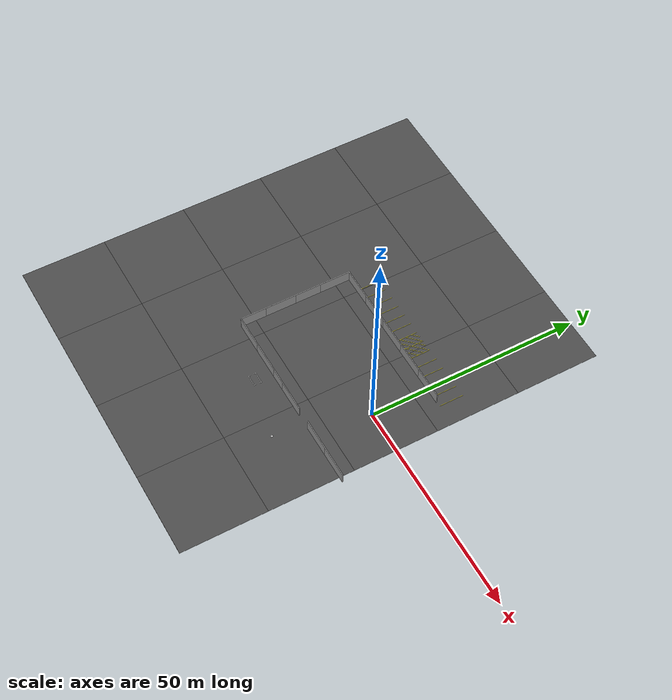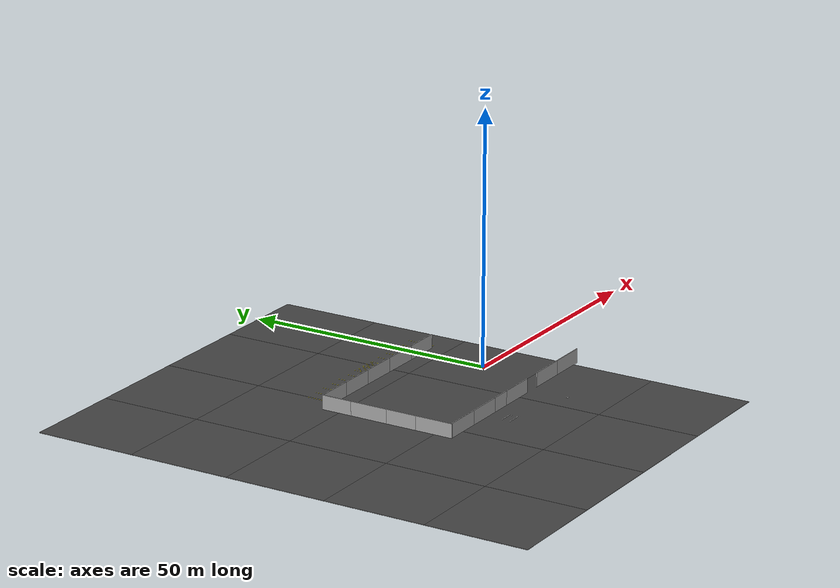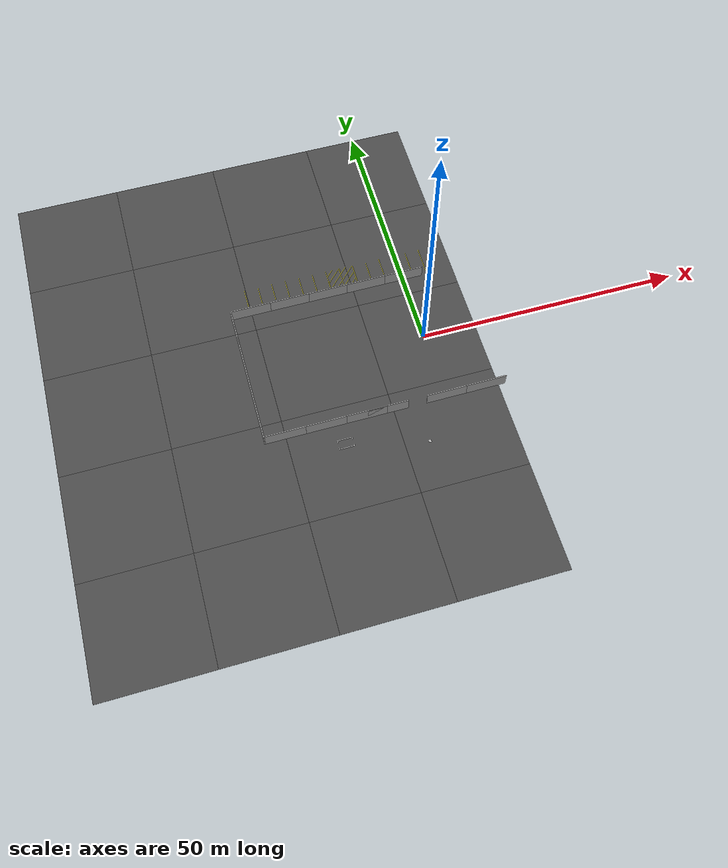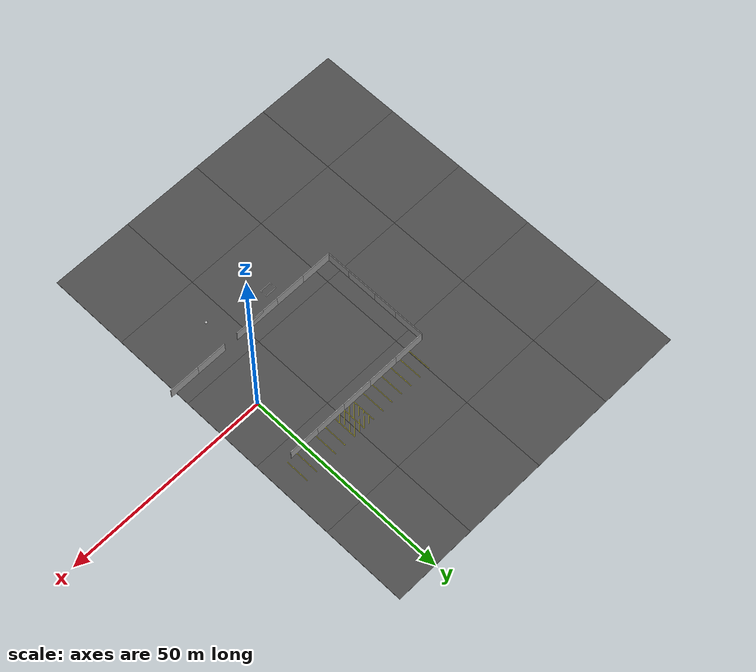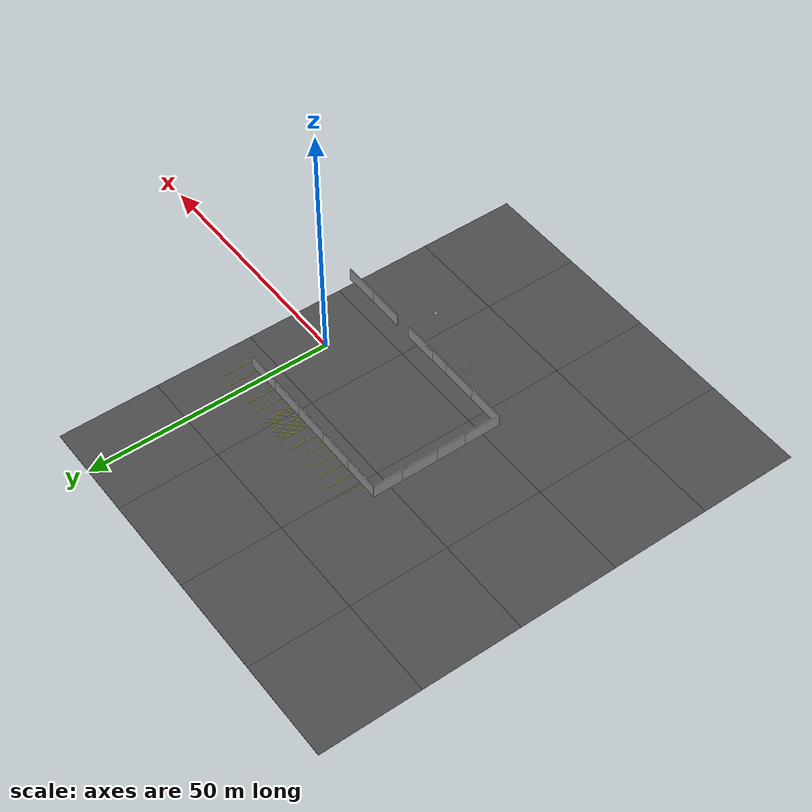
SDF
<sdf version="1.6">
 <world name="default">
  <model name="grey_wall">
   <static>1</static>
   <link name="link">
    <pose>0 0 1.4 0 -0 0</pose>
    <collision name="collision"><geometry><box><size>7.5 0.2 2.8</size></box></geometry></collision>
    <visual name="visual">
     <cast_shadows>0</cast_shadows>
     <geometry><box><size>7.5 0.2 2.8</size></box></geometry>
     <material>
      <script>
       <uri>model://grey_wall/materials/scripts</uri>
       <uri>model://grey_wall/materials/textures</uri>
       <name>vrc/grey_wall</name>
      </script>
     </material>
    </visual>
   </link>
   <pose>0 -13.5 0 0 -0 0</pose>
  </model>
  <model name="grey_wall_0">
   <static>1</static>
   <link name="link">
    <pose>0 0 1.4 0 -0 0</pose>
    <collision name="collision"><geometry><box><size>7.5 0.2 2.8</size></box></geometry></collision>
    <visual name="visual">
     <cast_shadows>0</cast_shadows>
     <geometry><box><size>7.5 0.2 2.8</size></box></geometry>
     <material>
      <script>
       <uri>model://grey_wall/materials/scripts</uri>
       <uri>model://grey_wall/materials/textures</uri>
       <name>vrc/grey_wall</name>
      </script>
     </material>
    </visual>
   </link>
   <pose>7.5 -13.5 0 0 -0 0</pose>
  </model>
  <model name="grey_wall_1">
   <static>1</static>
   <link name="link">
    <pose>0 0 1.4 0 -0 0</pose>
    <collision name="collision"><geometry><box><size>7.5 0.2 2.8</size></box></geometry></collision>
    <visual name="visual">
     <cast_shadows>0</cast_shadows>
     <geometry><box><size>7.5 0.2 2.8</size></box></geometry>
     <material>
      <script>
       <uri>model://grey_wall/materials/scripts</uri>
       <uri>model://grey_wall/materials/textures</uri>
       <name>vrc/grey_wall</name>
      </script>
     </material>
    </visual>
   </link>
   <pose>-11 -13.5 0 0 -0 0</pose>
  </model>
  <model name="grey_wall_3">
   <static>1</static>
   <link name="link">
    <pose>0 0 1.4 0 -0 0</pose>
    <collision name="collision"><geometry><box><size>7.5 0.2 2.8</size></box></geometry></collision>
    <visual name="visual">
     <cast_shadows>0</cast_shadows>
     <geometry><box><size>7.5 0.2 2.8</size></box></geometry>
     <material>
      <script>
       <uri>model://grey_wall/materials/scripts</uri>
       <uri>model://grey_wall/materials/textures</uri>
       <name>vrc/grey_wall</name>
      </script>
     </material>
    </visual>
   </link>
   <pose>0 13.5 0 0 -0 0</pose>
  </model>
  <model name="grey_wall_4">
   <static>1</static>
   <link name="link">
    <pose>0 0 1.4 0 -0 0</pose>
    <collision name="collision"><geometry><box><size>7.5 0.2 2.8</size></box></geometry></collision>
    <visual name="visual">
     <cast_shadows>0</cast_shadows>
     <geometry><box><size>7.5 0.2 2.8</size></box></geometry>
     <material>
      <script>
       <uri>model://grey_wall/materials/scripts</uri>
       <uri>model://grey_wall/materials/textures</uri>
       <name>vrc/grey_wall</name>
      </script>
     </material>
    </visual>
   </link>
   <pose>-7.5 13.5 0 0 -0 0</pose>
  </model>
  <model name="grey_wall_8">
   <static>1</static>
   <link name="link">
    <pose>0 0 1.4 0 -0 0</pose>
    <collision name="collision"><geometry><box><size>7.5 0.2 2.8</size></box></geometry></collision>
    <visual name="visual">
     <cast_shadows>0</cast_shadows>
     <geometry><box><size>7.5 0.2 2.8</size></box></geometry>
     <material>
      <script>
       <uri>model://grey_wall/materials/scripts</uri>
       <uri>model://grey_wall/materials/textures</uri>
       <name>vrc/grey_wall</name>
      </script>
     </material>
    </visual>
   </link>
   <pose>-15 -13.5 0 0 -0 0</pose>
  </model>
  <model name="grey_wall_9">
   <static>1</static>
   <link name="link">
    <pose>0 0 1.4 0 -0 0</pose>
    <collision name="collision"><geometry><box><size>7.5 0.2 2.8</size></box></geometry></collision>
    <visual name="visual">
     <cast_shadows>0</cast_shadows>
     <geometry><box><size>7.5 0.2 2.8</size></box></geometry>
     <material>
      <script>
       <uri>model://grey_wall/materials/scripts</uri>
       <uri>model://grey_wall/materials/textures</uri>
       <name>vrc/grey_wall</name>
      </script>
     </material>
    </visual>
   </link>
   <pose>-22.5 -13.5 0 0 -0 0</pose>
  </model>
  <model name="grey_wall_10">
   <static>1</static>
   <link name="link">
    <pose>0 0 1.4 0 -0 0</pose>
    <collision name="collision"><geometry><box><size>7.5 0.2 2.8</size></box></geometry></collision>
    <visual name="visual">
     <cast_shadows>0</cast_shadows>
     <geometry><box><size>7.5 0.2 2.8</size></box></geometry>
     <material>
      <script>
       <uri>model://grey_wall/materials/scripts</uri>
       <uri>model://grey_wall/materials/textures</uri>
       <name>vrc/grey_wall</name>
      </script>
     </material>
    </visual>
   </link>
   <pose>-30 -13.5 0 0 -0 0</pose>
  </model>
  <model name="grey_wall_14">
   <static>1</static>
   <link name="link">
    <pose>0 0 1.4 0 -0 0</pose>
    <collision name="collision"><geometry><box><size>7.5 0.2 2.8</size></box></geometry></collision>
    <visual name="visual">
     <cast_shadows>0</cast_shadows>
     <geometry><box><size>7.5 0.2 2.8</size></box></geometry>
     <material>
      <script>
       <uri>model://grey_wall/materials/scripts</uri>
       <uri>model://grey_wall/materials/textures</uri>
       <name>vrc/grey_wall</name>
      </script>
     </material>
    </visual>
   </link>
   <pose>-15 13.5 0 0 -0 0</pose>
  </model>
  <model name="grey_wall_15">
   <static>1</static>
   <link name="link">
    <pose>0 0 1.4 0 -0 0</pose>
    <collision name="collision"><geometry><box><size>7.5 0.2 2.8</size></box></geometry></collision>
    <visual name="visual">
     <cast_shadows>0</cast_shadows>
     <geometry><box><size>7.5 0.2 2.8</size></box></geometry>
     <material>
      <script>
       <uri>model://grey_wall/materials/scripts</uri>
       <uri>model://grey_wall/materials/textures</uri>
       <name>vrc/grey_wall</name>
      </script>
     </material>
    </visual>
   </link>
   <pose>-22.5 13.5 0 0 -0 0</pose>
  </model>
  <model name="grey_wall_16">
   <static>1</static>
   <link name="link">
    <pose>0 0 1.4 0 -0 0</pose>
    <collision name="collision"><geometry><box><size>7.5 0.2 2.8</size></box></geometry></collision>
    <visual name="visual">
     <cast_shadows>0</cast_shadows>
     <geometry><box><size>7.5 0.2 2.8</size></box></geometry>
     <material>
      <script>
       <uri>model://grey_wall/materials/scripts</uri>
       <uri>model://grey_wall/materials/textures</uri>
       <name>vrc/grey_wall</name>
      </script>
     </material>
    </visual>
   </link>
   <pose>-30 13.5 0 0 -0 0</pose>
  </model>
  <model name="grey_wall_21">
   <static>1</static>
   <link name="link">
    <pose>0 0 1.4 0 -0 0</pose>
    <collision name="collision"><geometry><box><size>7.5 0.2 2.8</size></box></geometry></collision>
    <visual name="visual">
     <cast_shadows>0</cast_shadows>
     <geometry><box><size>7.5 0.2 2.8</size></box></geometry>
     <material>
      <script>
       <uri>model://grey_wall/materials/scripts</uri>
       <uri>model://grey_wall/materials/textures</uri>
       <name>vrc/grey_wall</name>
      </script>
     </material>
    </visual>
   </link>
   <pose>-33.85 3.75 0 0 -0 1.5708</pose>
  </model>
  <model name="grey_wall_22">
   <static>1</static>
   <link name="link">
    <pose>0 0 1.4 0 -0 0</pose>
    <collision name="collision"><geometry><box><size>7.5 0.2 2.8</size></box></geometry></collision>
    <visual name="visual">
     <cast_shadows>0</cast_shadows>
     <geometry><box><size>7.5 0.2 2.8</size></box></geometry>
     <material>
      <script>
       <uri>model://grey_wall/materials/scripts</uri>
       <uri>model://grey_wall/materials/textures</uri>
       <name>vrc/grey_wall</name>
      </script>
     </material>
    </visual>
   </link>
   <pose>-33.85 9.85 0 0 -0 1.5708</pose>
  </model>
  <model name="grey_wall_23">
   <static>1</static>
   <link name="link">
    <pose>0 0 1.4 0 -0 0</pose>
    <collision name="collision"><geometry><box><size>7.5 0.2 2.8</size></box></geometry></collision>
    <visual name="visual">
     <cast_shadows>0</cast_shadows>
     <geometry><box><size>7.5 0.2 2.8</size></box></geometry>
     <material>
      <script>
       <uri>model://grey_wall/materials/scripts</uri>
       <uri>model://grey_wall/materials/textures</uri>
       <name>vrc/grey_wall</name>
      </script>
     </material>
    </visual>
   </link>
   <pose>-33.85 -3.75 0 0 -0 1.5708</pose>
  </model>
  <model name="grey_wall_24">
   <static>1</static>
   <link name="link">
    <pose>0 0 1.4 0 -0 0</pose>
    <collision name="collision"><geometry><box><size>7.5 0.2 2.8</size></box></geometry></collision>
    <visual name="visual">
     <cast_shadows>0</cast_shadows>
     <geometry><box><size>7.5 0.2 2.8</size></box></geometry>
     <material>
      <script>
       <uri>model://grey_wall/materials/scripts</uri>
       <uri>model://grey_wall/materials/textures</uri>
       <name>vrc/grey_wall</name>
      </script>
     </material>
    </visual>
   </link>
   <pose>-33.85 -9.85 0 0 -0 1.5708</pose>
  </model>
  <model name="asphalt_plane">
   <static>1</static>
   <link name="link">
    <collision name="collision"><geometry><box><size>20 20 0.1</size></box></geometry></collision>
    <visual name="visual">
     <cast_shadows>0</cast_shadows>
     <geometry><box><size>20 20 0.1</size></box></geometry>
     <material>
      <script>
       <uri>model://asphalt_plane/materials/scripts</uri>
       <uri>model://asphalt_plane/materials/textures</uri>
       <name>vrc/asphalt</name>
      </script>
     </material>
    </visual>
   </link>
  </model>
  <model name="asphalt_plane_0">
   <static>1</static>
   <link name="link">
    <collision name="collision"><geometry><box><size>20 20 0.1</size></box></geometry></collision>
    <visual name="visual">
     <cast_shadows>0</cast_shadows>
     <geometry><box><size>20 20 0.1</size></box></geometry>
     <material>
      <script>
       <uri>model://asphalt_plane/materials/scripts</uri>
       <uri>model://asphalt_plane/materials/textures</uri>
       <name>vrc/asphalt</name>
      </script>
     </material>
    </visual>
   </link>
   <pose>-20 0 0 0 -0 0</pose>
  </model>
  <model name="asphalt_plane_1">
   <static>1</static>
   <link name="link">
    <collision name="collision"><geometry><box><size>20 20 0.1</size></box></geometry></collision>
    <visual name="visual">
     <cast_shadows>0</cast_shadows>
     <geometry><box><size>20 20 0.1</size></box></geometry>
     <material>
      <script>
       <uri>model://asphalt_plane/materials/scripts</uri>
       <uri>model://asphalt_plane/materials/textures</uri>
       <name>vrc/asphalt</name>
      </script>
     </material>
    </visual>
   </link>
   <pose>-40 0 0 0 -0 0</pose>
  </model>
  <model name="asphalt_plane_4">
   <static>1</static>
   <link name="link">
    <collision name="collision"><geometry><box><size>20 20 0.1</size></box></geometry></collision>
    <visual name="visual">
     <cast_shadows>0</cast_shadows>
     <geometry><box><size>20 20 0.1</size></box></geometry>
     <material>
      <script>
       <uri>model://asphalt_plane/materials/scripts</uri>
       <uri>model://asphalt_plane/materials/textures</uri>
       <name>vrc/asphalt</name>
      </script>
     </material>
    </visual>
   </link>
   <pose>0 -20 0 0 -0 0</pose>
  </model>
  <model name="asphalt_plane_5">
   <static>1</static>
   <link name="link">
    <collision name="collision"><geometry><box><size>20 20 0.1</size></box></geometry></collision>
    <visual name="visual">
     <cast_shadows>0</cast_shadows>
     <geometry><box><size>20 20 0.1</size></box></geometry>
     <material>
      <script>
       <uri>model://asphalt_plane/materials/scripts</uri>
       <uri>model://asphalt_plane/materials/textures</uri>
       <name>vrc/asphalt</name>
      </script>
     </material>
    </visual>
   </link>
   <pose>-20 -20 0 0 -0 0</pose>
  </model>
  <model name="asphalt_plane_6">
   <static>1</static>
   <link name="link">
    <collision name="collision"><geometry><box><size>20 20 0.1</size></box></geometry></collision>
    <visual name="visual">
     <cast_shadows>0</cast_shadows>
     <geometry><box><size>20 20 0.1</size></box></geometry>
     <material>
      <script>
       <uri>model://asphalt_plane/materials/scripts</uri>
       <uri>model://asphalt_plane/materials/textures</uri>
       <name>vrc/asphalt</name>
      </script>
     </material>
    </visual>
   </link>
   <pose>-40 -20 0 0 -0 0</pose>
  </model>
  <model name="asphalt_plane_9">
   <static>1</static>
   <link name="link">
    <collision name="collision"><geometry><box><size>20 20 0.1</size></box></geometry></collision>
    <visual name="visual">
     <cast_shadows>0</cast_shadows>
     <geometry><box><size>20 20 0.1</size></box></geometry>
     <material>
      <script>
       <uri>model://asphalt_plane/materials/scripts</uri>
       <uri>model://asphalt_plane/materials/textures</uri>
       <name>vrc/asphalt</name>
      </script>
     </material>
    </visual>
   </link>
   <pose>-40 20 0 0 -0 0</pose>
  </model>
  <model name="asphalt_plane_10">
   <static>1</static>
   <link name="link">
    <collision name="collision"><geometry><box><size>20 20 0.1</size></box></geometry></collision>
    <visual name="visual">
     <cast_shadows>0</cast_shadows>
     <geometry><box><size>20 20 0.1</size></box></geometry>
     <material>
      <script>
       <uri>model://asphalt_plane/materials/scripts</uri>
       <uri>model://asphalt_plane/materials/textures</uri>
       <name>vrc/asphalt</name>
      </script>
     </material>
    </visual>
   </link>
   <pose>-20 20 0 0 -0 0</pose>
  </model>
  <model name="asphalt_plane_11">
   <static>1</static>
   <link name="link">
    <collision name="collision"><geometry><box><size>20 20 0.1</size></box></geometry></collision>
    <visual name="visual">
     <cast_shadows>0</cast_shadows>
     <geometry><box><size>20 20 0.1</size></box></geometry>
     <material>
      <script>
       <uri>model://asphalt_plane/materials/scripts</uri>
       <uri>model://asphalt_plane/materials/textures</uri>
       <name>vrc/asphalt</name>
      </script>
     </material>
    </visual>
   </link>
   <pose>0 20 0 0 -0 0</pose>
  </model>
  <model name="yellow_point">
   <static>1</static>
   <link name="link">
    <collision name="collision">
     <geometry><plane><normal>0 0 1</normal><size>0.5 0.5</size></plane></geometry>
     <surface><friction><ode><mu>100</mu><mu2>50</mu2></ode></friction></surface>
    </collision>
    <visual name="visual">
     <cast_shadows>0</cast_shadows>
     <geometry><plane><normal>0 0 1</normal><size>0.5 0.5</size></plane></geometry>
     <material>
      <script>
       <uri>model://yellow_point/materials/scripts</uri>
       <uri>model://yellow_point/materials/textures/</uri>
       <name>MyGroundPlane/Image</name>
      </script>
     </material>
    </visual>
   </link>
   <pose>-5.5 -21 0.06 0 -0 0</pose>
  </model>
  <model name="asphalt_plane_20">
   <static>1</static>
   <link name="link">
    <collision name="collision"><geometry><box><size>20 20 0.1</size></box></geometry></collision>
    <visual name="visual">
     <cast_shadows>0</cast_shadows>
     <geometry><box><size>20 20 0.1</size></box></geometry>
     <material>
      <script>
       <uri>model://asphalt_plane/materials/scripts</uri>
       <uri>model://asphalt_plane/materials/textures</uri>
       <name>vrc/asphalt</name>
      </script>
     </material>
    </visual>
   </link>
   <pose>0 -40 0 0 -0 0</pose>
  </model>
  <model name="asphalt_plane_21">
   <static>1</static>
   <link name="link">
    <collision name="collision"><geometry><box><size>20 20 0.1</size></box></geometry></collision>
    <visual name="visual">
     <cast_shadows>0</cast_shadows>
     <geometry><box><size>20 20 0.1</size></box></geometry>
     <material>
      <script>
       <uri>model://asphalt_plane/materials/scripts</uri>
       <uri>model://asphalt_plane/materials/textures</uri>
       <name>vrc/asphalt</name>
      </script>
     </material>
    </visual>
   </link>
   <pose>-20 -40 0 0 -0 0</pose>
  </model>
  <model name="asphalt_plane_22">
   <static>1</static>
   <link name="link">
    <collision name="collision"><geometry><box><size>20 20 0.1</size></box></geometry></collision>
    <visual name="visual">
     <cast_shadows>0</cast_shadows>
     <geometry><box><size>20 20 0.1</size></box></geometry>
     <material>
      <script>
       <uri>model://asphalt_plane/materials/scripts</uri>
       <uri>model://asphalt_plane/materials/textures</uri>
       <name>vrc/asphalt</name>
      </script>
     </material>
    </visual>
   </link>
   <pose>-40 -40 0 0 -0 0</pose>
  </model>
  <model name="asphalt_plane_23">
   <static>1</static>
   <link name="link">
    <collision name="collision"><geometry><box><size>20 20 0.1</size></box></geometry></collision>
    <visual name="visual">
     <cast_shadows>0</cast_shadows>
     <geometry><box><size>20 20 0.1</size></box></geometry>
     <material>
      <script>
       <uri>model://asphalt_plane/materials/scripts</uri>
       <uri>model://asphalt_plane/materials/textures</uri>
       <name>vrc/asphalt</name>
      </script>
     </material>
    </visual>
   </link>
   <pose>-60 -40 0 0 -0 0</pose>
  </model>
  <model name="asphalt_plane_24">
   <static>1</static>
   <link name="link">
    <collision name="collision"><geometry><box><size>20 20 0.1</size></box></geometry></collision>
    <visual name="visual">
     <cast_shadows>0</cast_shadows>
     <geometry><box><size>20 20 0.1</size></box></geometry>
     <material>
      <script>
       <uri>model://asphalt_plane/materials/scripts</uri>
       <uri>model://asphalt_plane/materials/textures</uri>
       <name>vrc/asphalt</name>
      </script>
     </material>
    </visual>
   </link>
   <pose>-60 -20 0 0 -0 0</pose>
  </model>
  <model name="asphalt_plane_25">
   <static>1</static>
   <link name="link">
    <collision name="collision"><geometry><box><size>20 20 0.1</size></box></geometry></collision>
    <visual name="visual">
     <cast_shadows>0</cast_shadows>
     <geometry><box><size>20 20 0.1</size></box></geometry>
     <material>
      <script>
       <uri>model://asphalt_plane/materials/scripts</uri>
       <uri>model://asphalt_plane/materials/textures</uri>
       <name>vrc/asphalt</name>
      </script>
     </material>
    </visual>
   </link>
   <pose>-60 0 0 0 -0 0</pose>
  </model>
  <model name="asphalt_plane_26">
   <static>1</static>
   <link name="link">
    <collision name="collision"><geometry><box><size>20 20 0.1</size></box></geometry></collision>
    <visual name="visual">
     <cast_shadows>0</cast_shadows>
     <geometry><box><size>20 20 0.1</size></box></geometry>
     <material>
      <script>
       <uri>model://asphalt_plane/materials/scripts</uri>
       <uri>model://asphalt_plane/materials/textures</uri>
       <name>vrc/asphalt</name>
      </script>
     </material>
    </visual>
   </link>
   <pose>-60 20 0 0 -0 0</pose>
  </model>
  <model name="asphalt_plane_27">
   <static>1</static>
   <link name="link">
    <collision name="collision"><geometry><box><size>20 20 0.1</size></box></geometry></collision>
    <visual name="visual">
     <cast_shadows>0</cast_shadows>
     <geometry><box><size>20 20 0.1</size></box></geometry>
     <material>
      <script>
       <uri>model://asphalt_plane/materials/scripts</uri>
       <uri>model://asphalt_plane/materials/textures</uri>
       <name>vrc/asphalt</name>
      </script>
     </material>
    </visual>
   </link>
   <pose>-60 40 0 0 -0 0</pose>
  </model>
  <model name="asphalt_plane_28">
   <static>1</static>
   <link name="link">
    <collision name="collision"><geometry><box><size>20 20 0.1</size></box></geometry></collision>
    <visual name="visual">
     <cast_shadows>0</cast_shadows>
     <geometry><box><size>20 20 0.1</size></box></geometry>
     <material>
      <script>
       <uri>model://asphalt_plane/materials/scripts</uri>
       <uri>model://asphalt_plane/materials/textures</uri>
       <name>vrc/asphalt</name>
      </script>
     </material>
    </visual>
   </link>
   <pose>-40 40 0 0 -0 0</pose>
  </model>
  <model name="asphalt_plane_29">
   <static>1</static>
   <link name="link">
    <collision name="collision"><geometry><box><size>20 20 0.1</size></box></geometry></collision>
    <visual name="visual">
     <cast_shadows>0</cast_shadows>
     <geometry><box><size>20 20 0.1</size></box></geometry>
     <material>
      <script>
       <uri>model://asphalt_plane/materials/scripts</uri>
       <uri>model://asphalt_plane/materials/textures</uri>
       <name>vrc/asphalt</name>
      </script>
     </material>
    </visual>
   </link>
   <pose>-20 40 0 0 -0 0</pose>
  </model>
  <model name="asphalt_plane_30">
   <static>1</static>
   <link name="link">
    <collision name="collision"><geometry><box><size>20 20 0.1</size></box></geometry></collision>
    <visual name="visual">
     <cast_shadows>0</cast_shadows>
     <geometry><box><size>20 20 0.1</size></box></geometry>
     <material>
      <script>
       <uri>model://asphalt_plane/materials/scripts</uri>
       <uri>model://asphalt_plane/materials/textures</uri>
       <name>vrc/asphalt</name>
      </script>
     </material>
    </visual>
   </link>
   <pose>0 40 0 0 -0 0</pose>
  </model>
  <model name="54m_redline_0">
   <static>1</static>
   <link name="link">
    <collision name="collision">
     <geometry><plane><normal>0 0 1</normal><size>59.3 0.1</size></plane></geometry>
     <surface><friction><ode><mu>100</mu><mu2>50</mu2></ode></friction></surface>
    </collision>
    <visual name="visual">
     <cast_shadows>0</cast_shadows>
     <geometry><plane><normal>0 0 1</normal><size>59.3 0.1</size></plane></geometry>
     <material>
      <script>
       <uri>model://54m_redline/materials/scripts</uri>
       <uri>model://54m_redline/materials/textures/</uri>
       <name>MyGroundPlane/Image</name>
      </script>
     </material>
    </visual>
   </link>
   <pose>-49 -2.6 0.06 0 -0 1.5707</pose>
  </model>
  <model name="parking_line">
   <static>1</static>
   <link name="link">
    <inertial>
     <pose>0 0 1 0 -0 0</pose>
     <mass>5</mass>
     <inertia><ixx>0.833</ixx><iyy>0.833</iyy><izz>0.833</izz><ixy>0</ixy><ixz>0</ixz><iyz>0</iyz></inertia>
    </inertial>
    <collision name="collision">
     <pose>0 0 1 0 -0 0</pose>
     <geometry><mesh><uri>model://parking_line/meshes/parking_line.dae</uri><scale>1 1 1</scale></mesh></geometry>
    </collision>
    <visual name="visual">
     <pose>0 0 1 0 -0 0</pose>
     <geometry><mesh><uri>model://parking_line/meshes/parking_line.dae</uri><scale>1 1 1</scale></mesh></geometry>
     <material>
      <script>
       <uri>model://parking_line/materials/scripts</uri>
       <uri>model://parking_line/materials/textures/</uri>
       <name>yellow</name>
      </script>
     </material>
    </visual>
   </link>
   <pose>-30.15 13.6 -1.049 0 -0 1.5707</pose>
  </model>
  <model name="parking_line_0">
   <static>1</static>
   <link name="link">
    <inertial>
     <pose>0 0 1 0 -0 0</pose>
     <mass>5</mass>
     <inertia><ixx>0.833</ixx><iyy>0.833</iyy><izz>0.833</izz><ixy>0</ixy><ixz>0</ixz><iyz>0</iyz></inertia>
    </inertial>
    <collision name="collision">
     <pose>0 0 1 0 -0 0</pose>
     <geometry><mesh><uri>model://parking_line/meshes/parking_line.dae</uri><scale>1 1 1</scale></mesh></geometry>
    </collision>
    <visual name="visual">
     <pose>0 0 1 0 -0 0</pose>
     <geometry><mesh><uri>model://parking_line/meshes/parking_line.dae</uri><scale>1 1 1</scale></mesh></geometry>
     <material>
      <script>
       <uri>model://parking_line/materials/scripts</uri>
       <uri>model://parking_line/materials/textures/</uri>
       <name>yellow</name>
      </script>
     </material>
    </visual>
   </link>
   <pose>-27.45 13.6 -1.049 0 -0 1.5707</pose>
  </model>
  <model name="parking_line_1">
   <static>1</static>
   <link name="link">
    <inertial>
     <pose>0 0 1 0 -0 0</pose>
     <mass>5</mass>
     <inertia><ixx>0.833</ixx><iyy>0.833</iyy><izz>0.833</izz><ixy>0</ixy><ixz>0</ixz><iyz>0</iyz></inertia>
    </inertial>
    <collision name="collision">
     <pose>0 0 1 0 -0 0</pose>
     <geometry><mesh><uri>model://parking_line/meshes/parking_line.dae</uri><scale>1 1 1</scale></mesh></geometry>
    </collision>
    <visual name="visual">
     <pose>0 0 1 0 -0 0</pose>
     <geometry><mesh><uri>model://parking_line/meshes/parking_line.dae</uri><scale>1 1 1</scale></mesh></geometry>
     <material>
      <script>
       <uri>model://parking_line/materials/scripts</uri>
       <uri>model://parking_line/materials/textures/</uri>
       <name>yellow</name>
      </script>
     </material>
    </visual>
   </link>
   <pose>-24.75 13.6 -1.049 0 -0 1.5707</pose>
  </model>
  <model name="parking_line_2">
   <static>1</static>
   <link name="link">
    <inertial>
     <pose>0 0 1 0 -0 0</pose>
     <mass>5</mass>
     <inertia><ixx>0.833</ixx><iyy>0.833</iyy><izz>0.833</izz><ixy>0</ixy><ixz>0</ixz><iyz>0</iyz></inertia>
    </inertial>
    <collision name="collision">
     <pose>0 0 1 0 -0 0</pose>
     <geometry><mesh><uri>model://parking_line/meshes/parking_line.dae</uri><scale>1 1 1</scale></mesh></geometry>
    </collision>
    <visual name="visual">
     <pose>0 0 1 0 -0 0</pose>
     <geometry><mesh><uri>model://parking_line/meshes/parking_line.dae</uri><scale>1 1 1</scale></mesh></geometry>
     <material>
      <script>
       <uri>model://parking_line/materials/scripts</uri>
       <uri>model://parking_line/materials/textures/</uri>
       <name>yellow</name>
      </script>
     </material>
    </visual>
   </link>
   <pose>-22.05 13.6 -1.049 0 -0 1.5707</pose>
  </model>
  <model name="parking_line_3">
   <static>1</static>
   <link name="link">
    <inertial>
     <pose>0 0 1 0 -0 0</pose>
     <mass>5</mass>
     <inertia><ixx>0.833</ixx><iyy>0.833</iyy><izz>0.833</izz><ixy>0</ixy><ixz>0</ixz><iyz>0</iyz></inertia>
    </inertial>
    <collision name="collision">
     <pose>0 0 1 0 -0 0</pose>
     <geometry><mesh><uri>model://parking_line/meshes/parking_line.dae</uri><scale>1 1 1</scale></mesh></geometry>
    </collision>
    <visual name="visual">
     <pose>0 0 1 0 -0 0</pose>
     <geometry><mesh><uri>model://parking_line/meshes/parking_line.dae</uri><scale>1 1 1</scale></mesh></geometry>
     <material>
      <script>
       <uri>model://parking_line/materials/scripts</uri>
       <uri>model://parking_line/materials/textures/</uri>
       <name>yellow</name>
      </script>
     </material>
    </visual>
   </link>
   <pose>-19.35 13.6 -1.049 0 -0 1.5707</pose>
  </model>
  <model name="parking_line_4">
   <static>1</static>
   <link name="link">
    <inertial>
     <pose>0 0 1 0 -0 0</pose>
     <mass>5</mass>
     <inertia><ixx>0.833</ixx><iyy>0.833</iyy><izz>0.833</izz><ixy>0</ixy><ixz>0</ixz><iyz>0</iyz></inertia>
    </inertial>
    <collision name="collision">
     <pose>0 0 1 0 -0 0</pose>
     <geometry><mesh><uri>model://parking_line/meshes/parking_line.dae</uri><scale>1 1 1</scale></mesh></geometry>
    </collision>
    <visual name="visual">
     <pose>0 0 1 0 -0 0</pose>
     <geometry><mesh><uri>model://parking_line/meshes/parking_line.dae</uri><scale>1 1 1</scale></mesh></geometry>
     <material>
      <script>
       <uri>model://parking_line/materials/scripts</uri>
       <uri>model://parking_line/materials/textures/</uri>
       <name>yellow</name>
      </script>
     </material>
    </visual>
   </link>
   <pose>-16.65 13.6 -1.049 0 -0 1.5707</pose>
  </model>
  <model name="parking_line_5">
   <static>1</static>
   <link name="link">
    <inertial>
     <pose>0 0 1 0 -0 0</pose>
     <mass>5</mass>
     <inertia><ixx>0.833</ixx><iyy>0.833</iyy><izz>0.833</izz><ixy>0</ixy><ixz>0</ixz><iyz>0</iyz></inertia>
    </inertial>
    <collision name="collision">
     <pose>0 0 1 0 -0 0</pose>
     <geometry><mesh><uri>model://parking_line/meshes/parking_line.dae</uri><scale>1 1 1</scale></mesh></geometry>
    </collision>
    <visual name="visual">
     <pose>0 0 1 0 -0 0</pose>
     <geometry><mesh><uri>model://parking_line/meshes/parking_line.dae</uri><scale>1 1 1</scale></mesh></geometry>
     <material>
      <script>
       <uri>model://parking_line/materials/scripts</uri>
       <uri>model://parking_line/materials/textures/</uri>
       <name>yellow</name>
      </script>
     </material>
    </visual>
   </link>
   <pose>-13.95 13.6 -1.049 0 -0 1.5707</pose>
  </model>
  <model name="parking_line_6">
   <static>1</static>
   <link name="link">
    <inertial>
     <pose>0 0 1 0 -0 0</pose>
     <mass>5</mass>
     <inertia><ixx>0.833</ixx><iyy>0.833</iyy><izz>0.833</izz><ixy>0</ixy><ixz>0</ixz><iyz>0</iyz></inertia>
    </inertial>
    <collision name="collision">
     <pose>0 0 1 0 -0 0</pose>
     <geometry><mesh><uri>model://parking_line/meshes/parking_line.dae</uri><scale>1 1 1</scale></mesh></geometry>
    </collision>
    <visual name="visual">
     <pose>0 0 1 0 -0 0</pose>
     <geometry><mesh><uri>model://parking_line/meshes/parking_line.dae</uri><scale>1 1 1</scale></mesh></geometry>
     <material>
      <script>
       <uri>model://parking_line/materials/scripts</uri>
       <uri>model://parking_line/materials/textures/</uri>
       <name>yellow</name>
      </script>
     </material>
    </visual>
   </link>
   <pose>-11.25 13.6 -1.049 0 -0 1.5707</pose>
  </model>
  <model name="parking_line_7">
   <static>1</static>
   <link name="link">
    <inertial>
     <pose>0 0 1 0 -0 0</pose>
     <mass>5</mass>
     <inertia><ixx>0.833</ixx><iyy>0.833</iyy><izz>0.833</izz><ixy>0</ixy><ixz>0</ixz><iyz>0</iyz></inertia>
    </inertial>
    <collision name="collision">
     <pose>0 0 1 0 -0 0</pose>
     <geometry><mesh><uri>model://parking_line/meshes/parking_line.dae</uri><scale>1 1 1</scale></mesh></geometry>
    </collision>
    <visual name="visual">
     <pose>0 0 1 0 -0 0</pose>
     <geometry><mesh><uri>model://parking_line/meshes/parking_line.dae</uri><scale>1 1 1</scale></mesh></geometry>
     <material>
      <script>
       <uri>model://parking_line/materials/scripts</uri>
       <uri>model://parking_line/materials/textures/</uri>
       <name>yellow</name>
      </script>
     </material>
    </visual>
   </link>
   <pose>-8.55 13.6 -1.049 0 -0 1.5707</pose>
  </model>
  <model name="parking_line_8">
   <static>1</static>
   <link name="link">
    <inertial>
     <pose>0 0 1 0 -0 0</pose>
     <mass>5</mass>
     <inertia><ixx>0.833</ixx><iyy>0.833</iyy><izz>0.833</izz><ixy>0</ixy><ixz>0</ixz><iyz>0</iyz></inertia>
    </inertial>
    <collision name="collision">
     <pose>0 0 1 0 -0 0</pose>
     <geometry><mesh><uri>model://parking_line/meshes/parking_line.dae</uri><scale>1 1 1</scale></mesh></geometry>
    </collision>
    <visual name="visual">
     <pose>0 0 1 0 -0 0</pose>
     <geometry><mesh><uri>model://parking_line/meshes/parking_line.dae</uri><scale>1 1 1</scale></mesh></geometry>
     <material>
      <script>
       <uri>model://parking_line/materials/scripts</uri>
       <uri>model://parking_line/materials/textures/</uri>
       <name>yellow</name>
      </script>
     </material>
    </visual>
   </link>
   <pose>-5.85 13.6 -1.049 0 -0 1.5707</pose>
  </model>
  <model name="parking_line_9">
   <static>1</static>
   <link name="link">
    <inertial>
     <pose>0 0 1 0 -0 0</pose>
     <mass>5</mass>
     <inertia><ixx>0.833</ixx><iyy>0.833</iyy><izz>0.833</izz><ixy>0</ixy><ixz>0</ixz><iyz>0</iyz></inertia>
    </inertial>
    <collision name="collision">
     <pose>0 0 1 0 -0 0</pose>
     <geometry><mesh><uri>model://parking_line/meshes/parking_line.dae</uri><scale>1 1 1</scale></mesh></geometry>
    </collision>
    <visual name="visual">
     <pose>0 0 1 0 -0 0</pose>
     <geometry><mesh><uri>model://parking_line/meshes/parking_line.dae</uri><scale>1 1 1</scale></mesh></geometry>
     <material>
      <script>
       <uri>model://parking_line/materials/scripts</uri>
       <uri>model://parking_line/materials/textures/</uri>
       <name>yellow</name>
      </script>
     </material>
    </visual>
   </link>
   <pose>-3.15 13.6 -1.049 0 -0 1.5707</pose>
  </model>
  <model name="parking_line_10">
   <static>1</static>
   <link name="link">
    <inertial>
     <pose>0 0 1 0 -0 0</pose>
     <mass>5</mass>
     <inertia><ixx>0.833</ixx><iyy>0.833</iyy><izz>0.833</izz><ixy>0</ixy><ixz>0</ixz><iyz>0</iyz></inertia>
    </inertial>
    <collision name="collision">
     <pose>0 0 1 0 -0 0</pose>
     <geometry><mesh><uri>model://parking_line/meshes/parking_line.dae</uri><scale>1 1 1</scale></mesh></geometry>
    </collision>
    <visual name="visual">
     <pose>0 0 1 0 -0 0</pose>
     <geometry><mesh><uri>model://parking_line/meshes/parking_line.dae</uri><scale>1 1 1</scale></mesh></geometry>
     <material>
      <script>
       <uri>model://parking_line/materials/scripts</uri>
       <uri>model://parking_line/materials/textures/</uri>
       <name>yellow</name>
      </script>
     </material>
    </visual>
   </link>
   <pose>-0.45 13.6 -1.049 0 -0 1.5707</pose>
  </model>
  <model name="parking_line_11">
   <static>1</static>
   <link name="link">
    <inertial>
     <pose>0 0 1 0 -0 0</pose>
     <mass>5</mass>
     <inertia><ixx>0.833</ixx><iyy>0.833</iyy><izz>0.833</izz><ixy>0</ixy><ixz>0</ixz><iyz>0</iyz></inertia>
    </inertial>
    <collision name="collision">
     <pose>0 0 1 0 -0 0</pose>
     <geometry><mesh><uri>model://parking_line/meshes/parking_line.dae</uri><scale>1 1 1</scale></mesh></geometry>
    </collision>
    <visual name="visual">
     <pose>0 0 1 0 -0 0</pose>
     <geometry><mesh><uri>model://parking_line/meshes/parking_line.dae</uri><scale>1 1 1</scale></mesh></geometry>
     <material>
      <script>
       <uri>model://parking_line/materials/scripts</uri>
       <uri>model://parking_line/materials/textures/</uri>
       <name>yellow</name>
      </script>
     </material>
    </visual>
   </link>
   <pose>2.25 13.6 -1.049 0 -0 1.5707</pose>
  </model>
  <model name="parking_line_12">
   <static>1</static>
   <link name="link">
    <inertial>
     <pose>0 0 1 0 -0 0</pose>
     <mass>5</mass>
     <inertia><ixx>0.833</ixx><iyy>0.833</iyy><izz>0.833</izz><ixy>0</ixy><ixz>0</ixz><iyz>0</iyz></inertia>
    </inertial>
    <collision name="collision">
     <pose>0 0 1 0 -0 0</pose>
     <geometry><mesh><uri>model://parking_line/meshes/parking_line.dae</uri><scale>1 1 1</scale></mesh></geometry>
    </collision>
    <visual name="visual">
     <pose>0 0 1 0 -0 0</pose>
     <geometry><mesh><uri>model://parking_line/meshes/parking_line.dae</uri><scale>1 1 1</scale></mesh></geometry>
     <material>
      <script>
       <uri>model://parking_line/materials/scripts</uri>
       <uri>model://parking_line/materials/textures/</uri>
       <name>yellow</name>
      </script>
     </material>
    </visual>
   </link>
   <pose>4.95 13.6 -1.049 0 -0 1.5707</pose>
  </model>
  <model name="bars">
   <static>1</static>
   <link name="link">
    <inertial>
     <pose>0 0 1 0 -0 0</pose>
     <mass>5</mass>
     <inertia><ixx>0.833</ixx><iyy>0.833</iyy><izz>0.833</izz><ixy>0</ixy><ixz>0</ixz><iyz>0</iyz></inertia>
    </inertial>
    <collision name="collision">
     <pose>0 0 1 0 -0 0</pose>
     <geometry><mesh><uri>model://bars/meshes/bars.dae</uri><scale>1 1 1</scale></mesh></geometry>
    </collision>
    <visual name="visual">
     <pose>0 0 1 0 -0 0</pose>
     <geometry><mesh><uri>model://bars/meshes/bars.dae</uri><scale>1 1 1</scale></mesh></geometry>
     <material>
      <script>
       <uri>model://bars/materials/scripts</uri>
       <uri>model://bars/materials/textures/</uri>
       <name>yellow</name>
      </script>
     </material>
    </visual>
   </link>
   <pose>-14.05 20.3 -0.04 1.5707 -0 0</pose>
  </model>
  <model name="start_grid">
   <static>1</static>
   <link name="link">
    <inertial>
     <pose>0 0 1 0 -0 0</pose>
     <mass>5</mass>
     <inertia><ixx>0.833</ixx><iyy>0.833</iyy><izz>0.833</izz><ixy>0</ixy><ixz>0</ixz><iyz>0</iyz></inertia>
    </inertial>
    <collision name="collision">
     <pose>0 0 1 0 -0 0</pose>
     <geometry><mesh><uri>model://start_grid/meshes/start_grid.dae</uri><scale>1 1 1</scale></mesh></geometry>
    </collision>
    <visual name="visual">
     <pose>0 0 1 0 -0 0</pose>
     <geometry><mesh><uri>model://start_grid/meshes/start_grid.dae</uri><scale>1 1 1</scale></mesh></geometry>
     <material>
      <script>
       <uri>model://start_grid/materials/scripts</uri>
       <uri>model://start_grid/materials/textures/</uri>
       <name>white</name>
      </script>
     </material>
    </visual>
   </link>
   <pose>-21.35 -15.5 0.04 1.5707 -0 0</pose>
  </model>
 </world>
</sdf>
